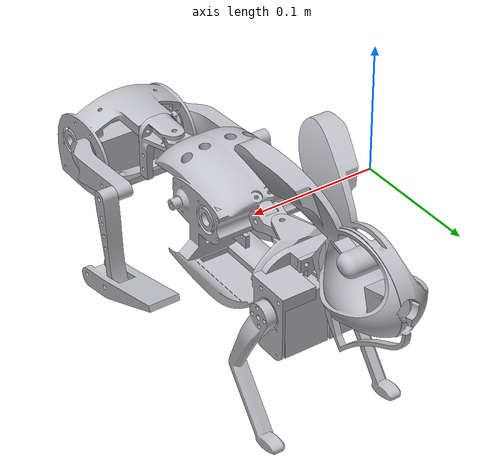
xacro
<robot xmlns:ns0="http://www.ros.org/wiki/xacro" name="URDF">

<ns0:include filename="$(find URDF_description)/urdf/materials.xacro" />
<ns0:include filename="$(find URDF_description)/urdf/URDF.trans" />
<ns0:include filename="$(find URDF_description)/urdf/URDF.gazebo" />
<link name="base_link">
  <inertial>
    <origin xyz="0.093521177237549 -0.04527147992595865 -0.014696316599405674" rpy="0 0 0" />
    <mass value="0.07275" />
    <inertia ixx="0.000258" iyy="0.000221" izz="0.000124" ixy="-0.0" iyz="6e-06" ixz="-0.0" />
  </inertial>
  <visual>
    <origin xyz="0 0 0" rpy="0 0 0" />
    <geometry>
      <mesh filename="package://URDF_description/meshes/base_link.stl" scale="0.001 0.001 0.001" />
    </geometry>
    <material name="silver" />
  </visual>
  <collision>
    <origin xyz="0 0 0" rpy="0 0 0" />
    <geometry>
      <mesh filename="package://URDF_description/meshes/base_link.stl" scale="0.001 0.001 0.001" />
    </geometry>
  </collision>
</link>

<link name="SpinePart1_v1_1">
  <inertial>
    <origin xyz="8.382538287110552e-08 0.00855274638879134 4.2950519461512366e-07" rpy="0 0 0" />
    <mass value="0.04275" />
    <inertia ixx="0.0" iyy="0.0" izz="0.0" ixy="-0.0" iyz="-0.0" ixz="0.0" />
  </inertial>
  <visual>
    <origin xyz="-0.093466 -0.006534 0.000129" rpy="0 0 0" />
    <geometry>
      <mesh filename="package://URDF_description/meshes/SpinePart1_v1_1.stl" scale="0.001 0.001 0.001" />
    </geometry>
    <material name="silver" />
  </visual>
  <collision>
    <origin xyz="-0.093466 -0.006534 0.000129" rpy="0 0 0" />
    <geometry>
      <mesh filename="package://URDF_description/meshes/SpinePart1_v1_1.stl" scale="0.001 0.001 0.001" />
    </geometry>
  </collision>
</link>

<link name="SpinePart1_v1__1__1">
  <inertial>
    <origin xyz="8.382538178863808e-08 -0.008552914039556964 4.2950519462683304e-07" rpy="0 0 0" />
    <mass value="0.04275" />
    <inertia ixx="0.0" iyy="0.0" izz="0.0" ixy="0.0" iyz="0.0" ixz="-0.0" />
  </inertial>
  <visual>
    <origin xyz="-0.093466 0.093466 0.000129" rpy="0 0 0" />
    <geometry>
      <mesh filename="package://URDF_description/meshes/SpinePart1_v1__1__1.stl" scale="0.001 0.001 0.001" />
    </geometry>
    <material name="silver" />
  </visual>
  <collision>
    <origin xyz="-0.093466 0.093466 0.000129" rpy="0 0 0" />
    <geometry>
      <mesh filename="package://URDF_description/meshes/SpinePart1_v1__1__1.stl" scale="0.001 0.001 0.001" />
    </geometry>
  </collision>
</link>

<link name="SpinePart2Front_v4_1">
  <inertial>
    <origin xyz="-0.00035256657717419593 0.01661212933867786 -0.0076066018537488435" rpy="0 0 0" />
    <mass value="0.0242" />
    <inertia ixx="1e-06" iyy="4e-06" izz="4e-06" ixy="-0.0" iyz="0.0" ixz="-0.0" />
  </inertial>
  <visual>
    <origin xyz="-0.093466 -0.024034 -0.003621" rpy="0 0 0" />
    <geometry>
      <mesh filename="package://URDF_description/meshes/SpinePart2Front_v4_1.stl" scale="0.001 0.001 0.001" />
    </geometry>
    <material name="silver" />
  </visual>
  <collision>
    <origin xyz="-0.093466 -0.024034 -0.003621" rpy="0 0 0" />
    <geometry>
      <mesh filename="package://URDF_description/meshes/SpinePart2Front_v4_1.stl" scale="0.001 0.001 0.001" />
    </geometry>
  </collision>
</link>

<link name="SpinePart2Back_v4_1">
  <inertial>
    <origin xyz="8.603572557164263e-08 -0.01565936937903993 -0.011568150248174282" rpy="0 0 0" />
    <mass value="0.0968" />
    <inertia ixx="2e-06" iyy="2e-06" izz="1e-06" ixy="0.0" iyz="-0.0" ixz="-0.0" />
  </inertial>
  <visual>
    <origin xyz="-0.093466 0.110966 -0.003621" rpy="0 0 0" />
    <geometry>
      <mesh filename="package://URDF_description/meshes/SpinePart2Back_v4_1.stl" scale="0.001 0.001 0.001" />
    </geometry>
    <material name="silver" />
  </visual>
  <collision>
    <origin xyz="-0.093466 0.110966 -0.003621" rpy="0 0 0" />
    <geometry>
      <mesh filename="package://URDF_description/meshes/SpinePart2Back_v4_1.stl" scale="0.001 0.001 0.001" />
    </geometry>
  </collision>
</link>

<link name="Top_v1_1">
  <inertial>
    <origin xyz="0.010000087100580438 0.013219875498006343 -0.01668956923771518" rpy="0 0 0" />
    <mass value="0.012" />
    <inertia ixx="1.3e-05" iyy="3.4e-05" izz="2.9e-05" ixy="0.0" iyz="-1e-06" ixz="0.0" />
  </inertial>
  <visual>
    <origin xyz="-0.083466 -0.049034 0.000379" rpy="0 0 0" />
    <geometry>
      <mesh filename="package://URDF_description/meshes/Top_v1_1.stl" scale="0.001 0.001 0.001" />
    </geometry>
    <material name="silver" />
  </visual>
  <collision>
    <origin xyz="-0.083466 -0.049034 0.000379" rpy="0 0 0" />
    <geometry>
      <mesh filename="package://URDF_description/meshes/Top_v1_1.stl" scale="0.001 0.001 0.001" />
    </geometry>
  </collision>
</link>

<link name="Bunny_Bottom_v2_v7_1">
  <inertial>
    <origin xyz="-0.009988469027734662 -0.03213521449020609 -0.021070533945666065" rpy="0 0 0" />
    <mass value="0.012" />
    <inertia ixx="2.6e-05" iyy="4.1e-05" izz="3.7e-05" ixy="-0.0" iyz="-3e-06" ixz="0.0" />
  </inertial>
  <visual>
    <origin xyz="-0.103466 0.135966 0.000379" rpy="0 0 0" />
    <geometry>
      <mesh filename="package://URDF_description/meshes/Bunny_Bottom_v2_v7_1.stl" scale="0.001 0.001 0.001" />
    </geometry>
    <material name="silver" />
  </visual>
  <collision>
    <origin xyz="-0.103466 0.135966 0.000379" rpy="0 0 0" />
    <geometry>
      <mesh filename="package://URDF_description/meshes/Bunny_Bottom_v2_v7_1.stl" scale="0.001 0.001 0.001" />
    </geometry>
  </collision>
</link>

<link name="Head_comp_v2_1">
  <inertial>
    <origin xyz="0.01000405917651935 0.01418921203389055 0.04202307290944826" rpy="0 0 0" />
    <mass value="0.04275" />
    <inertia ixx="0.00019" iyy="9.4e-05" izz="0.000141" ixy="-0.0" iyz="6.4e-05" ixz="0.0" />
  </inertial>
  <visual>
    <origin xyz="-0.083466 -0.063034 0.000379" rpy="0 0 0" />
    <geometry>
      <mesh filename="package://URDF_description/meshes/Head_comp_v2_1.stl" scale="0.001 0.001 0.001" />
    </geometry>
    <material name="silver" />
  </visual>
  <collision>
    <origin xyz="-0.083466 -0.063034 0.000379" rpy="0 0 0" />
    <geometry>
      <mesh filename="package://URDF_description/meshes/Head_comp_v2_1.stl" scale="0.001 0.001 0.001" />
    </geometry>
  </collision>
</link>

<link name="Front_leg_left_v4_1">
  <inertial>
    <origin xyz="-0.00731446182007113 -0.006158933680604356 -0.04951950125379251" rpy="0 0 0" />
    <mass value="0.04275" />
    <inertia ixx="1.7e-05" iyy="1.6e-05" izz="2e-06" ixy="-0.0" iyz="2e-06" ixz="-0.0" />
  </inertial>
  <visual>
    <origin xyz="-0.051466 -0.067784 0.026284" rpy="0 0 0" />
    <geometry>
      <mesh filename="package://URDF_description/meshes/Front_leg_left_v4_1.stl" scale="0.001 0.001 0.001" />
    </geometry>
    <material name="silver" />
  </visual>
  <collision>
    <origin xyz="-0.051466 -0.067784 0.026284" rpy="0 0 0" />
    <geometry>
      <mesh filename="package://URDF_description/meshes/Front_leg_left_v4_1.stl" scale="0.001 0.001 0.001" />
    </geometry>
  </collision>
</link>

<link name="Front_leg_left_v4_Spiegeln__1">
  <inertial>
    <origin xyz="0.00731487551943788 -0.006159117508587018 -0.04952082530571711" rpy="0 0 0" />
    <mass value="0.07275" />
    <inertia ixx="1.7e-05" iyy="1.6e-05" izz="2e-06" ixy="0.0" iyz="2e-06" ixz="0.0" />
  </inertial>
  <visual>
    <origin xyz="-0.135466 -0.067784 0.026284" rpy="0 0 0" />
    <geometry>
      <mesh filename="package://URDF_description/meshes/Front_leg_left_v4_Spiegeln__1.stl" scale="0.001 0.001 0.001" />
    </geometry>
    <material name="silver" />
  </visual>
  <collision>
    <origin xyz="-0.135466 -0.067784 0.026284" rpy="0 0 0" />
    <geometry>
      <mesh filename="package://URDF_description/meshes/Front_leg_left_v4_Spiegeln__1.stl" scale="0.001 0.001 0.001" />
    </geometry>
  </collision>
</link>

<link name="Upper_Leg_v5_1">
  <inertial>
    <origin xyz="0.011259292985538849 0.029817421597334304 0.004429756046884902" rpy="0 0 0" />
    <mass value="0.024249999999999997" />
    <inertia ixx="8e-06" iyy="1e-06" izz="8e-06" ixy="-1e-06" iyz="-1e-06" ixz="-0.0" />
  </inertial>
  <visual>
    <origin xyz="-0.132966 0.167966 0.027926" rpy="0 0 0" />
    <geometry>
      <mesh filename="package://URDF_description/meshes/Upper_Leg_v5_1.stl" scale="0.001 0.001 0.001" />
    </geometry>
    <material name="silver" />
  </visual>
  <collision>
    <origin xyz="-0.132966 0.167966 0.027926" rpy="0 0 0" />
    <geometry>
      <mesh filename="package://URDF_description/meshes/Upper_Leg_v5_1.stl" scale="0.001 0.001 0.001" />
    </geometry>
  </collision>
</link>

<link name="Upper_Leg_v5__1__1">
  <inertial>
    <origin xyz="-0.011259120709139876 0.029817421251839143 0.004429756370895356" rpy="0 0 0" />
    <mass value="0.024249999999999997" />
    <inertia ixx="8e-06" iyy="1e-06" izz="8e-06" ixy="1e-06" iyz="-1e-06" ixz="0.0" />
  </inertial>
  <visual>
    <origin xyz="-0.053966 0.167966 0.027926" rpy="0 0 0" />
    <geometry>
      <mesh filename="package://URDF_description/meshes/Upper_Leg_v5__1__1.stl" scale="0.001 0.001 0.001" />
    </geometry>
    <material name="silver" />
  </visual>
  <collision>
    <origin xyz="-0.053966 0.167966 0.027926" rpy="0 0 0" />
    <geometry>
      <mesh filename="package://URDF_description/meshes/Upper_Leg_v5__1__1.stl" scale="0.001 0.001 0.001" />
    </geometry>
  </collision>
</link>

<link name="Lower_Leg_v2__1__1">
  <inertial>
    <origin xyz="-0.006249914696757501 0.004543602264908533 -0.030581656492855342" rpy="0 0 0" />
    <mass value="0.0164" />
    <inertia ixx="4e-06" iyy="4e-06" izz="0.0" ixy="0.0" iyz="1e-06" ixz="-0.0" />
  </inertial>
  <visual>
    <origin xyz="-0.033966 0.098726 0.017639" rpy="0 0 0" />
    <geometry>
      <mesh filename="package://URDF_description/meshes/Lower_Leg_v2__1__1.stl" scale="0.001 0.001 0.001" />
    </geometry>
    <material name="silver" />
  </visual>
  <collision>
    <origin xyz="-0.033966 0.098726 0.017639" rpy="0 0 0" />
    <geometry>
      <mesh filename="package://URDF_description/meshes/Lower_Leg_v2__1__1.stl" scale="0.001 0.001 0.001" />
    </geometry>
  </collision>
</link>

<link name="Lower_Leg_v2_1">
  <inertial>
    <origin xyz="0.006250085036557884 0.004543603054928666 -0.030581657144094308" rpy="0 0 0" />
    <mass value="0.0164" />
    <inertia ixx="4e-06" iyy="4e-06" izz="0.0" ixy="-0.0" iyz="1e-06" ixz="-0.0" />
  </inertial>
  <visual>
    <origin xyz="-0.152966 0.098726 0.017639" rpy="0 0 0" />
    <geometry>
      <mesh filename="package://URDF_description/meshes/Lower_Leg_v2_1.stl" scale="0.001 0.001 0.001" />
    </geometry>
    <material name="silver" />
  </visual>
  <collision>
    <origin xyz="-0.152966 0.098726 0.017639" rpy="0 0 0" />
    <geometry>
      <mesh filename="package://URDF_description/meshes/Lower_Leg_v2_1.stl" scale="0.001 0.001 0.001" />
    </geometry>
  </collision>
</link>

<link name="Foot_v4__1__1">
  <inertial>
    <origin xyz="-0.007642159608727106 0.012836351097717177 0.0028740713527897477" rpy="0 0 0" />
    <mass value="0.0082" />
    <inertia ixx="1.4e-05" iyy="3e-06" izz="1.4e-05" ixy="-0.0" iyz="-4e-06" ixz="-0.0" />
  </inertial>
  <visual>
    <origin xyz="-0.165466 0.088439 0.086879" rpy="0 0 0" />
    <geometry>
      <mesh filename="package://URDF_description/meshes/Foot_v4__1__1.stl" scale="0.001 0.001 0.001" />
    </geometry>
    <material name="silver" />
  </visual>
  <collision>
    <origin xyz="-0.165466 0.088439 0.086879" rpy="0 0 0" />
    <geometry>
      <mesh filename="package://URDF_description/meshes/Foot_v4__1__1.stl" scale="0.001 0.001 0.001" />
    </geometry>
  </collision>
</link>

<link name="Foot_v4_1">
  <inertial>
    <origin xyz="-0.007642159467273164 0.012836350404539745 0.002874072059183344" rpy="0 0 0" />
    <mass value="0.0164" />
    <inertia ixx="1.4e-05" iyy="3e-06" izz="1.4e-05" ixy="-0.0" iyz="-4e-06" ixz="-0.0" />
  </inertial>
  <visual>
    <origin xyz="-0.033966 0.088439 0.086879" rpy="0 0 0" />
    <geometry>
      <mesh filename="package://URDF_description/meshes/Foot_v4_1.stl" scale="0.001 0.001 0.001" />
    </geometry>
    <material name="silver" />
  </visual>
  <collision>
    <origin xyz="-0.033966 0.088439 0.086879" rpy="0 0 0" />
    <geometry>
      <mesh filename="package://URDF_description/meshes/Foot_v4_1.stl" scale="0.001 0.001 0.001" />
    </geometry>
  </collision>
</link>

<link name="AtomS3R-M12_v1_1">
  <inertial>
    <origin xyz="8.382534673334607e-08 0.010542383576317621 0.0026915588221251823" rpy="0 0 0" />
    <mass value="0.0164" />
    <inertia ixx="1e-06" iyy="1e-06" izz="1e-06" ixy="-0.0" iyz="0.0" ixz="0.0" />
  </inertial>
  <visual>
    <origin xyz="-0.093466 -0.134294 -0.010656" rpy="0 0 0" />
    <geometry>
      <mesh filename="package://URDF_description/meshes/AtomS3R-M12_v1_1.stl" scale="0.001 0.001 0.001" />
    </geometry>
    <material name="silver" />
  </visual>
  <collision>
    <origin xyz="-0.093466 -0.134294 -0.010656" rpy="0 0 0" />
    <geometry>
      <mesh filename="package://URDF_description/meshes/AtomS3R-M12_v1_1.stl" scale="0.001 0.001 0.001" />
    </geometry>
  </collision>
</link>

<link name="Servo_v3_1">
  <inertial>
    <origin xyz="-0.01905795356620997 0.00031627620296667547 -0.005250207840053457" rpy="0 0 0" />
    <mass value="0.0082" />
    <inertia ixx="1.1e-05" iyy="1.7e-05" izz="1e-05" ixy="0.0" iyz="0.0" ixz="-1e-06" />
  </inertial>
  <visual>
    <origin xyz="-0.132966 0.194949 0.03192" rpy="0 0 0" />
    <geometry>
      <mesh filename="package://URDF_description/meshes/Servo_v3_1.stl" scale="0.001 0.001 0.001" />
    </geometry>
    <material name="silver" />
  </visual>
  <collision>
    <origin xyz="-0.132966 0.194949 0.03192" rpy="0 0 0" />
    <geometry>
      <mesh filename="package://URDF_description/meshes/Servo_v3_1.stl" scale="0.001 0.001 0.001" />
    </geometry>
  </collision>
</link>

<link name="Servo_v3_3">
  <inertial>
    <origin xyz="-0.019057954954030912 0.000316512243115491 -0.005250366361170787" rpy="0 0 0" />
    <mass value="0.062200000000000005" />
    <inertia ixx="1.1e-05" iyy="1.7e-05" izz="1e-05" ixy="0.0" iyz="0.0" ixz="-1e-06" />
  </inertial>
  <visual>
    <origin xyz="-0.130466 0.167966 0.027926" rpy="0 0 0" />
    <geometry>
      <mesh filename="package://URDF_description/meshes/Servo_v3_3.stl" scale="0.001 0.001 0.001" />
    </geometry>
    <material name="silver" />
  </visual>
  <collision>
    <origin xyz="-0.130466 0.167966 0.027926" rpy="0 0 0" />
    <geometry>
      <mesh filename="package://URDF_description/meshes/Servo_v3_3.stl" scale="0.001 0.001 0.001" />
    </geometry>
  </collision>
</link>

<link name="Servo_v3_6">
  <inertial>
    <origin xyz="0.019058125249613644 0.0003162762029672028 -0.005250207840053478" rpy="0 0 0" />
    <mass value="0.062200000000000005" />
    <inertia ixx="1.1e-05" iyy="1.7e-05" izz="1e-05" ixy="-0.0" iyz="0.0" ixz="1e-06" />
  </inertial>
  <visual>
    <origin xyz="-0.053966 0.194949 0.03192" rpy="0 0 0" />
    <geometry>
      <mesh filename="package://URDF_description/meshes/Servo_v3_6.stl" scale="0.001 0.001 0.001" />
    </geometry>
    <material name="silver" />
  </visual>
  <collision>
    <origin xyz="-0.053966 0.194949 0.03192" rpy="0 0 0" />
    <geometry>
      <mesh filename="package://URDF_description/meshes/Servo_v3_6.stl" scale="0.001 0.001 0.001" />
    </geometry>
  </collision>
</link>

<link name="Servo_v3_2">
  <inertial>
    <origin xyz="0.01905812663743496 0.00031651224311607384 -0.005250366361170801" rpy="0 0 0" />
    <mass value="0.062200000000000005" />
    <inertia ixx="1.1e-05" iyy="1.7e-05" izz="1e-05" ixy="-0.0" iyz="0.0" ixz="1e-06" />
  </inertial>
  <visual>
    <origin xyz="-0.056466 0.167966 0.027926" rpy="0 0 0" />
    <geometry>
      <mesh filename="package://URDF_description/meshes/Servo_v3_2.stl" scale="0.001 0.001 0.001" />
    </geometry>
    <material name="silver" />
  </visual>
  <collision>
    <origin xyz="-0.056466 0.167966 0.027926" rpy="0 0 0" />
    <geometry>
      <mesh filename="package://URDF_description/meshes/Servo_v3_2.stl" scale="0.001 0.001 0.001" />
    </geometry>
  </collision>
</link>

<link name="Servo_v3_5">
  <inertial>
    <origin xyz="-0.0190579584738053 -0.00525952525649049 4.295051946438008e-07" rpy="0 0 0" />
    <mass value="0.062200000000000005" />
    <inertia ixx="1.1e-05" iyy="1e-05" izz="1.7e-05" ixy="-1e-06" iyz="-0.0" ixz="-0.0" />
  </inertial>
  <visual>
    <origin xyz="-0.130466 0.014466 0.000129" rpy="0 0 0" />
    <geometry>
      <mesh filename="package://URDF_description/meshes/Servo_v3_5.stl" scale="0.001 0.001 0.001" />
    </geometry>
    <material name="silver" />
  </visual>
  <collision>
    <origin xyz="-0.130466 0.014466 0.000129" rpy="0 0 0" />
    <geometry>
      <mesh filename="package://URDF_description/meshes/Servo_v3_5.stl" scale="0.001 0.001 0.001" />
    </geometry>
  </collision>
</link>

<link name="Servo_v3_4">
  <inertial>
    <origin xyz="0.01905812612457032 -0.00525952525649017 4.2950519471690314e-07" rpy="0 0 0" />
    <mass value="0.07275" />
    <inertia ixx="1.1e-05" iyy="1e-05" izz="1.7e-05" ixy="1e-06" iyz="-0.0" ixz="-0.0" />
  </inertial>
  <visual>
    <origin xyz="-0.056466 0.014466 0.000129" rpy="0 0 0" />
    <geometry>
      <mesh filename="package://URDF_description/meshes/Servo_v3_4.stl" scale="0.001 0.001 0.001" />
    </geometry>
    <material name="silver" />
  </visual>
  <collision>
    <origin xyz="-0.056466 0.014466 0.000129" rpy="0 0 0" />
    <geometry>
      <mesh filename="package://URDF_description/meshes/Servo_v3_4.stl" scale="0.001 0.001 0.001" />
    </geometry>
  </collision>
</link>

<link name="Servo_v3_8">
  <inertial>
    <origin xyz="-0.01905795847380458 0.00031651261915700835 -0.005249847032475944" rpy="0 0 0" />
    <mass value="0.024249999999999997" />
    <inertia ixx="1.1e-05" iyy="1.7e-05" izz="1e-05" ixy="0.0" iyz="0.0" ixz="-1e-06" />
  </inertial>
  <visual>
    <origin xyz="-0.133466 -0.067784 0.026284" rpy="0 0 0" />
    <geometry>
      <mesh filename="package://URDF_description/meshes/Servo_v3_8.stl" scale="0.001 0.001 0.001" />
    </geometry>
    <material name="silver" />
  </visual>
  <collision>
    <origin xyz="-0.133466 -0.067784 0.026284" rpy="0 0 0" />
    <geometry>
      <mesh filename="package://URDF_description/meshes/Servo_v3_8.stl" scale="0.001 0.001 0.001" />
    </geometry>
  </collision>
</link>

<link name="Servo_v3_7">
  <inertial>
    <origin xyz="0.019058126124571126 0.0003165126191574247 -0.005249847032475958" rpy="0 0 0" />
    <mass value="0.07300870349423769" />
    <inertia ixx="1.1e-05" iyy="1.7e-05" izz="1e-05" ixy="-0.0" iyz="0.0" ixz="1e-06" />
  </inertial>
  <visual>
    <origin xyz="-0.053466 -0.067784 0.026284" rpy="0 0 0" />
    <geometry>
      <mesh filename="package://URDF_description/meshes/Servo_v3_7.stl" scale="0.001 0.001 0.001" />
    </geometry>
    <material name="silver" />
  </visual>
  <collision>
    <origin xyz="-0.053466 -0.067784 0.026284" rpy="0 0 0" />
    <geometry>
      <mesh filename="package://URDF_description/meshes/Servo_v3_7.stl" scale="0.001 0.001 0.001" />
    </geometry>
  </collision>
</link>

<joint name="Umdrehung 1" type="revolute">
  <origin xyz="0.093466 0.006534 -0.000129" rpy="0 0 0" />
  <parent link="base_link" />
  <child link="SpinePart1_v1_1" />
  <axis xyz="1.0 -0.0 0.0" />
  <limit upper="0.261799" lower="-0.785398" effort="100" velocity="100" />
</joint>

<joint name="Umdrehung 2" type="revolute">
  <origin xyz="0.093466 -0.093466 -0.000129" rpy="0 0 0" />
  <parent link="base_link" />
  <child link="SpinePart1_v1__1__1" />
  <axis xyz="1.0 -0.0 0.0" />
  <limit upper="0.785398" lower="-0.610865" effort="100" velocity="100" />
</joint>

<joint name="Umdrehung 3" type="revolute">
  <origin xyz="0.0 0.0175 0.00375" rpy="0 0 0" />
  <parent link="SpinePart1_v1_1" />
  <child link="SpinePart2Front_v4_1" />
  <axis xyz="0.0 0.0 -1.0" />
  <limit upper="0.523599" lower="-0.523599" effort="100" velocity="100" />
</joint>

<joint name="Umdrehung 4" type="revolute">
  <origin xyz="0.0 -0.0175 0.00375" rpy="0 0 0" />
  <parent link="SpinePart1_v1__1__1" />
  <child link="SpinePart2Back_v4_1" />
  <axis xyz="0.0 -0.0 -1.0" />
  <limit upper="0.523599" lower="-0.523599" effort="100" velocity="100" />
</joint>

<joint name="Starr 5" type="fixed">
  <origin xyz="-0.01 0.025 -0.004" rpy="0 0 0" />
  <parent link="SpinePart2Front_v4_1" />
  <child link="Top_v1_1" />
</joint>

<joint name="Starr 6" type="fixed">
  <origin xyz="0.01 -0.025 -0.004" rpy="0 0 0" />
  <parent link="SpinePart2Back_v4_1" />
  <child link="Bunny_Bottom_v2_v7_1" />
</joint>

<joint name="Starr 7" type="fixed">
  <origin xyz="0.0 0.014 0.0" rpy="0 0 0" />
  <parent link="Top_v1_1" />
  <child link="Head_comp_v2_1" />
</joint>

<joint name="Umdrehung 8" type="revolute">
  <origin xyz="-0.032 0.01875 -0.025905" rpy="0 0 0" />
  <parent link="Top_v1_1" />
  <child link="Front_leg_left_v4_1" />
  <axis xyz="-1.0 0.0 -0.0" />
  <limit upper="1.047198" lower="-1.570796" effort="100" velocity="100" />
</joint>

<joint name="Umdrehung 9" type="revolute">
  <origin xyz="0.052 0.01875 -0.025905" rpy="0 0 0" />
  <parent link="Top_v1_1" />
  <child link="Front_leg_left_v4_Spiegeln__1" />
  <axis xyz="-1.0 0.0 -0.0" />

  <limit upper="1.047198" lower="-1.570796" effort="100" velocity="100" />
</joint>

<joint name="Umdrehung 10" type="revolute">
  <origin xyz="0.0295 -0.032 -0.027547" rpy="0 0 0" />
  <parent link="Bunny_Bottom_v2_v7_1" />
  <child link="Upper_Leg_v5_1" />
  <axis xyz="1.0 0.0 0.0" />

  <limit upper="0.174533" lower="-2.268928" effort="100" velocity="100" />
</joint>

<joint name="Umdrehung 11" type="revolute">
  <origin xyz="-0.0495 -0.032 -0.027547" rpy="0 0 0" />
  <parent link="Bunny_Bottom_v2_v7_1" />
  <child link="Upper_Leg_v5__1__1" />
  <axis xyz="1.0 -0.0 -0.0" />
  <limit upper="0.174533" lower="-2.268928" effort="100" velocity="100" />
</joint>

<joint name="Umdrehung 12" type="revolute">
  <origin xyz="-0.02 0.06924 0.010287" rpy="0 0 0" />
  <parent link="Upper_Leg_v5__1__1" />
  <child link="Lower_Leg_v2__1__1" />
  <axis xyz="-1.0 0.0 0.0" />
  <limit upper="0.785398" lower="-1.047198" effort="100" velocity="100" />
</joint>

<joint name="Umdrehung 13" type="revolute">
  <origin xyz="0.02 0.06924 0.010287" rpy="0 0 0" />
  <parent link="Upper_Leg_v5_1" />
  <child link="Lower_Leg_v2_1" />
  <axis xyz="-1.0 -0.0 -0.0" />

  <limit upper="0.785398" lower="-1.047198" effort="100" velocity="100" />
</joint>

<joint name="Umdrehung 14" type="revolute">
  <origin xyz="0.0125 0.010287 -0.06924" rpy="0 0 0" />
  <parent link="Lower_Leg_v2_1" />
  <child link="Foot_v4__1__1" />
  <axis xyz="-1.0 -0.0 -0.0" />

  <limit upper="0.785398" lower="-0.785398" effort="100" velocity="100" />
</joint>

<joint name="Umdrehung 15" type="revolute">
  <origin xyz="0.0 0.010287 -0.06924" rpy="0 0 0" />
  <parent link="Lower_Leg_v2__1__1" />
  <child link="Foot_v4_1" />
  <axis xyz="-1.0 0.0 0.0" />
  <limit upper="0.785398" lower="-0.785398" effort="100" velocity="100" />
</joint>

<joint name="Starr 16" type="fixed">
  <origin xyz="0.01 0.07126 0.011035" rpy="0 0 0" />
  <parent link="Head_comp_v2_1" />
  <child link="AtomS3R-M12_v1_1" />
</joint>

<joint name="Starr 17" type="fixed">
  <origin xyz="0.0295 -0.058983 -0.031541" rpy="0 0 0" />
  <parent link="Bunny_Bottom_v2_v7_1" />
  <child link="Servo_v3_1" />
</joint>

<joint name="Starr 18" type="fixed">
  <origin xyz="0.027 -0.032 -0.027547" rpy="0 0 0" />
  <parent link="Bunny_Bottom_v2_v7_1" />
  <child link="Servo_v3_3" />
</joint>

<joint name="Starr 19" type="fixed">
  <origin xyz="-0.0495 -0.058983 -0.031541" rpy="0 0 0" />
  <parent link="Bunny_Bottom_v2_v7_1" />
  <child link="Servo_v3_6" />
</joint>

<joint name="Starr 20" type="fixed">
  <origin xyz="-0.047 -0.032 -0.027547" rpy="0 0 0" />
  <parent link="Bunny_Bottom_v2_v7_1" />
  <child link="Servo_v3_2" />
</joint>

<joint name="Starr 21" type="fixed">
  <origin xyz="0.130466 -0.014466 -0.000129" rpy="0 0 0" />
  <parent link="base_link" />
  <child link="Servo_v3_5" />
</joint>

<joint name="Starr 22" type="fixed">
  <origin xyz="0.056466 -0.014466 -0.000129" rpy="0 0 0" />
  <parent link="base_link" />
  <child link="Servo_v3_4" />
</joint>

<joint name="Starr 23" type="fixed">
  <origin xyz="0.05 0.01875 -0.025905" rpy="0 0 0" />
  <parent link="Top_v1_1" />
  <child link="Servo_v3_8" />
</joint>

<joint name="Starr 24" type="fixed">
  <origin xyz="-0.03 0.01875 -0.025905" rpy="0 0 0" />
  <parent link="Top_v1_1" />
  <child link="Servo_v3_7" />
</joint>

</robot>

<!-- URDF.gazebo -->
<robot name="URDF" xmlns:xacro="http://www.ros.org/wiki/xacro" >

<xacro:property name="body_color" value="Gazebo/Silver" />

<gazebo>
  <plugin name="control" filename="libgazebo_ros_control.so"/>
</gazebo>
<gazebo reference="base_link">
  <material>${body_color}</material>
  <mu1>0.2</mu1>
  <mu2>0.2</mu2>
  <selfCollide>true</selfCollide>
  <gravity>true</gravity>
</gazebo>

<gazebo reference="SpinePart1_v1_1">
  <material>${body_color}</material>
  <mu1>0.2</mu1>
  <mu2>0.2</mu2>
  <selfCollide>true</selfCollide>
</gazebo>

<gazebo reference="SpinePart1_v1__1__1">
  <material>${body_color}</material>
  <mu1>0.2</mu1>
  <mu2>0.2</mu2>
  <selfCollide>true</selfCollide>
</gazebo>

<gazebo reference="SpinePart2Front_v4_1">
  <material>${body_color}</material>
  <mu1>0.2</mu1>
  <mu2>0.2</mu2>
  <selfCollide>true</selfCollide>
</gazebo>

<gazebo reference="SpinePart2Back_v4_1">
  <material>${body_color}</material>
  <mu1>0.2</mu1>
  <mu2>0.2</mu2>
  <selfCollide>true</selfCollide>
</gazebo>

<gazebo reference="Top_v1_1">
  <material>${body_color}</material>
  <mu1>0.2</mu1>
  <mu2>0.2</mu2>
  <selfCollide>true</selfCollide>
</gazebo>

<gazebo reference="Bunny_Bottom_v2_v7_1">
  <material>${body_color}</material>
  <mu1>0.2</mu1>
  <mu2>0.2</mu2>
  <selfCollide>true</selfCollide>
</gazebo>

<gazebo reference="Head_comp_v2_1">
  <material>${body_color}</material>
  <mu1>0.2</mu1>
  <mu2>0.2</mu2>
  <selfCollide>true</selfCollide>
</gazebo>

<gazebo reference="Front_leg_left_v4_1">
  <material>${body_color}</material>
  <mu1>0.2</mu1>
  <mu2>0.2</mu2>
  <selfCollide>true</selfCollide>
</gazebo>

<gazebo reference="Front_leg_left_v4_Spiegeln__1">
  <material>${body_color}</material>
  <mu1>0.2</mu1>
  <mu2>0.2</mu2>
  <selfCollide>true</selfCollide>
</gazebo>

<gazebo reference="Upper_Leg_v5_1">
  <material>${body_color}</material>
  <mu1>0.2</mu1>
  <mu2>0.2</mu2>
  <selfCollide>true</selfCollide>
</gazebo>

<gazebo reference="Upper_Leg_v5__1__1">
  <material>${body_color}</material>
  <mu1>0.2</mu1>
  <mu2>0.2</mu2>
  <selfCollide>true</selfCollide>
</gazebo>

<gazebo reference="Lower_Leg_v2__1__1">
  <material>${body_color}</material>
  <mu1>0.2</mu1>
  <mu2>0.2</mu2>
  <selfCollide>true</selfCollide>
</gazebo>

<gazebo reference="Lower_Leg_v2_1">
  <material>${body_color}</material>
  <mu1>0.2</mu1>
  <mu2>0.2</mu2>
  <selfCollide>true</selfCollide>
</gazebo>

<gazebo reference="Foot_v4__1__1">
  <material>${body_color}</material>
  <mu1>0.2</mu1>
  <mu2>0.2</mu2>
  <selfCollide>true</selfCollide>
</gazebo>

<gazebo reference="Foot_v4_1">
  <material>${body_color}</material>
  <mu1>0.2</mu1>
  <mu2>0.2</mu2>
  <selfCollide>true</selfCollide>
</gazebo>

<gazebo reference="AtomS3R-M12_v1_1">
  <material>${body_color}</material>
  <mu1>0.2</mu1>
  <mu2>0.2</mu2>
  <selfCollide>true</selfCollide>
</gazebo>

<gazebo reference="Servo_v3_1">
  <material>${body_color}</material>
  <mu1>0.2</mu1>
  <mu2>0.2</mu2>
  <selfCollide>true</selfCollide>
</gazebo>

<gazebo reference="Servo_v3_3">
  <material>${body_color}</material>
  <mu1>0.2</mu1>
  <mu2>0.2</mu2>
  <selfCollide>true</selfCollide>
</gazebo>

<gazebo reference="Servo_v3_6">
  <material>${body_color}</material>
  <mu1>0.2</mu1>
  <mu2>0.2</mu2>
  <selfCollide>true</selfCollide>
</gazebo>

<gazebo reference="Servo_v3_2">
  <material>${body_color}</material>
  <mu1>0.2</mu1>
  <mu2>0.2</mu2>
  <selfCollide>true</selfCollide>
</gazebo>

<gazebo reference="Servo_v3_5">
  <material>${body_color}</material>
  <mu1>0.2</mu1>
  <mu2>0.2</mu2>
  <selfCollide>true</selfCollide>
</gazebo>

<gazebo reference="Servo_v3_4">
  <material>${body_color}</material>
  <mu1>0.2</mu1>
  <mu2>0.2</mu2>
  <selfCollide>true</selfCollide>
</gazebo>

<gazebo reference="Servo_v3_8">
  <material>${body_color}</material>
  <mu1>0.2</mu1>
  <mu2>0.2</mu2>
  <selfCollide>true</selfCollide>
</gazebo>

<gazebo reference="Servo_v3_7">
  <material>${body_color}</material>
  <mu1>0.2</mu1>
  <mu2>0.2</mu2>
  <selfCollide>true</selfCollide>
</gazebo>

</robot>
